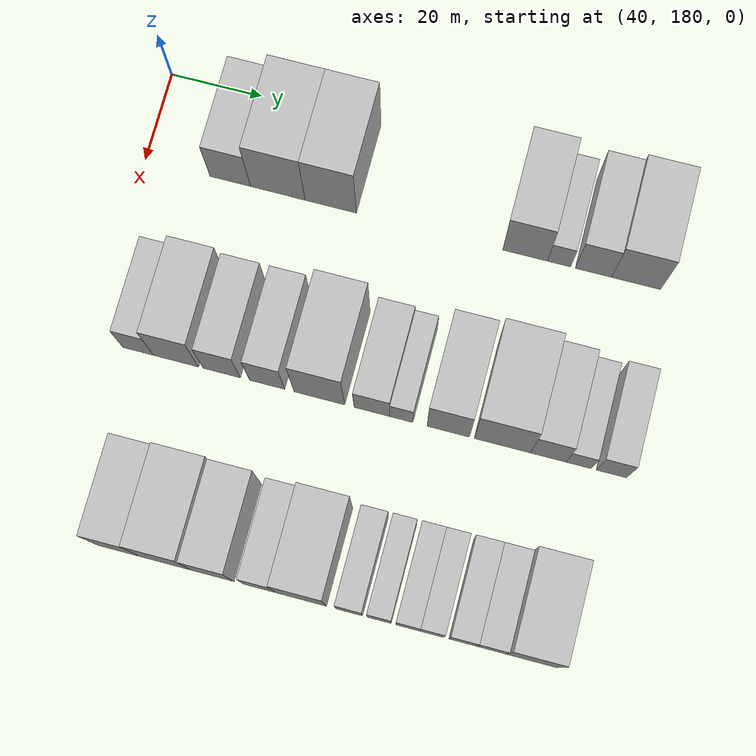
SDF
<sdf version="1.6">
 <world name="default">
  <model name="building_70">
   <static>1</static>
   <pose>50.0000 198.7415 0 0.000000 0.000000 0.000000</pose>
   <link name="link">
    <pose>0 0 9.00 0 0 0</pose>
    <collision name="collision"><geometry><box><size>20.0000 8.8567 18.0000</size></box></geometry></collision>
    <visual name="visual">
     <cast_shadows>0</cast_shadows>
     <geometry><box><size>20.0000 8.8567 18.0000</size></box></geometry>
     <material>
      <script>
       <uri>model://HANNAS_wall/materials/scripts</uri>
       <uri>model://HANNAS_wall/materials/textures</uri>
       <name>vrc/HANNAS_wall</name>
      </script>
     </material>
    </visual>
   </link>
  </model>
  <model name="building_71">
   <static>1</static>
   <pose>50.0000 209.1260 0 0.000000 0.000000 0.000000</pose>
   <link name="link">
    <pose>0 0 12.00 0 0 0</pose>
    <collision name="collision"><geometry><box><size>20.0000 11.9123 24.0000</size></box></geometry></collision>
    <visual name="visual">
     <cast_shadows>0</cast_shadows>
     <geometry><box><size>20.0000 11.9123 24.0000</size></box></geometry>
     <material>
      <script>
       <uri>model://HANNAS_wall/materials/scripts</uri>
       <uri>model://HANNAS_wall/materials/textures</uri>
       <name>vrc/HANNAS_wall</name>
      </script>
     </material>
    </visual>
   </link>
  </model>
  <model name="building_72">
   <static>1</static>
   <pose>50.0000 220.6536 0 0.000000 0.000000 0.000000</pose>
   <link name="link">
    <pose>0 0 12.00 0 0 0</pose>
    <collision name="collision"><geometry><box><size>20.0000 11.1428 24.0000</size></box></geometry></collision>
    <visual name="visual">
     <cast_shadows>0</cast_shadows>
     <geometry><box><size>20.0000 11.1428 24.0000</size></box></geometry>
     <material>
      <script>
       <uri>model://HANNAS_wall/materials/scripts</uri>
       <uri>model://HANNAS_wall/materials/textures</uri>
       <name>vrc/HANNAS_wall</name>
      </script>
     </material>
    </visual>
   </link>
  </model>
  <model name="building_73">
   <static>1</static>
   <pose>50.0000 262.5950 0 0.000000 0.000000 0.000000</pose>
   <link name="link">
    <pose>0 0 10.50 0 0 0</pose>
    <collision name="collision"><geometry><box><size>20.0000 9.5800 21.0000</size></box></geometry></collision>
    <visual name="visual">
     <cast_shadows>0</cast_shadows>
     <geometry><box><size>20.0000 9.5800 21.0000</size></box></geometry>
     <material>
      <script>
       <uri>model://HANNAS_wall/materials/scripts</uri>
       <uri>model://HANNAS_wall/materials/textures</uri>
       <name>vrc/HANNAS_wall</name>
      </script>
     </material>
    </visual>
   </link>
  </model>
  <model name="building_74">
   <static>1</static>
   <pose>50.0000 269.8548 0 0.000000 0.000000 0.000000</pose>
   <link name="link">
    <pose>0 0 6.00 0 0 0</pose>
    <collision name="collision"><geometry><box><size>20.0000 4.9397 12.0000</size></box></geometry></collision>
    <visual name="visual">
     <cast_shadows>0</cast_shadows>
     <geometry><box><size>20.0000 4.9397 12.0000</size></box></geometry>
     <material>
      <script>
       <uri>model://HANNAS_wall/materials/scripts</uri>
       <uri>model://HANNAS_wall/materials/textures</uri>
       <name>vrc/HANNAS_wall</name>
      </script>
     </material>
    </visual>
   </link>
  </model>
  <model name="building_75">
   <static>1</static>
   <pose>50.0000 277.1566 0 0.000000 0.000000 0.000000</pose>
   <link name="link">
    <pose>0 0 9.00 0 0 0</pose>
    <collision name="collision"><geometry><box><size>20.0000 7.6638 18.0000</size></box></geometry></collision>
    <visual name="visual">
     <cast_shadows>0</cast_shadows>
     <geometry><box><size>20.0000 7.6638 18.0000</size></box></geometry>
     <material>
      <script>
       <uri>model://HANNAS_wall/materials/scripts</uri>
       <uri>model://HANNAS_wall/materials/textures</uri>
       <name>vrc/HANNAS_wall</name>
      </script>
     </material>
    </visual>
   </link>
  </model>
  <model name="building_76">
   <static>1</static>
   <pose>50.0000 286.2230 0 0.000000 0.000000 0.000000</pose>
   <link name="link">
    <pose>0 0 10.50 0 0 0</pose>
    <collision name="collision"><geometry><box><size>20.0000 10.4691 21.0000</size></box></geometry></collision>
    <visual name="visual">
     <cast_shadows>0</cast_shadows>
     <geometry><box><size>20.0000 10.4691 21.0000</size></box></geometry>
     <material>
      <script>
       <uri>model://HANNAS_wall/materials/scripts</uri>
       <uri>model://HANNAS_wall/materials/textures</uri>
       <name>vrc/HANNAS_wall</name>
      </script>
     </material>
    </visual>
   </link>
  </model>
  <model name="building_145">
   <static>1</static>
   <pose>90.0000 190.6063 0 0.000000 0.000000 0.000000</pose>
   <link name="link">
    <pose>0 0 7.50 0 0 0</pose>
    <collision name="collision"><geometry><box><size>20.0000 6.5402 15.0000</size></box></geometry></collision>
    <visual name="visual">
     <cast_shadows>0</cast_shadows>
     <geometry><box><size>20.0000 6.5402 15.0000</size></box></geometry>
     <material>
      <script>
       <uri>model://HANNAS_wall/materials/scripts</uri>
       <uri>model://HANNAS_wall/materials/textures</uri>
       <name>vrc/HANNAS_wall</name>
      </script>
     </material>
    </visual>
   </link>
  </model>
  <model name="building_146">
   <static>1</static>
   <pose>90.0000 198.6851 0 0.000000 0.000000 0.000000</pose>
   <link name="link">
    <pose>0 0 10.50 0 0 0</pose>
    <collision name="collision"><geometry><box><size>20.0000 9.6175 21.0000</size></box></geometry></collision>
    <visual name="visual">
     <cast_shadows>0</cast_shadows>
     <geometry><box><size>20.0000 9.6175 21.0000</size></box></geometry>
     <material>
      <script>
       <uri>model://HANNAS_wall/materials/scripts</uri>
       <uri>model://HANNAS_wall/materials/textures</uri>
       <name>vrc/HANNAS_wall</name>
      </script>
     </material>
    </visual>
   </link>
  </model>
  <model name="building_147">
   <static>1</static>
   <pose>90.0000 208.4368 0 0.000000 0.000000 0.000000</pose>
   <link name="link">
    <pose>0 0 9.00 0 0 0</pose>
    <collision name="collision"><geometry><box><size>20.0000 7.8859 18.0000</size></box></geometry></collision>
    <visual name="visual">
     <cast_shadows>0</cast_shadows>
     <geometry><box><size>20.0000 7.8859 18.0000</size></box></geometry>
     <material>
      <script>
       <uri>model://HANNAS_wall/materials/scripts</uri>
       <uri>model://HANNAS_wall/materials/textures</uri>
       <name>vrc/HANNAS_wall</name>
      </script>
     </material>
    </visual>
   </link>
  </model>
  <model name="building_148">
   <static>1</static>
   <pose>90.0000 218.0921 0 0.000000 0.000000 0.000000</pose>
   <link name="link">
    <pose>0 0 9.00 0 0 0</pose>
    <collision name="collision"><geometry><box><size>20.0000 7.4246 18.0000</size></box></geometry></collision>
    <visual name="visual">
     <cast_shadows>0</cast_shadows>
     <geometry><box><size>20.0000 7.4246 18.0000</size></box></geometry>
     <material>
      <script>
       <uri>model://HANNAS_wall/materials/scripts</uri>
       <uri>model://HANNAS_wall/materials/textures</uri>
       <name>vrc/HANNAS_wall</name>
      </script>
     </material>
    </visual>
   </link>
  </model>
  <model name="building_149">
   <static>1</static>
   <pose>90.0000 229.1550 0 0.000000 0.000000 0.000000</pose>
   <link name="link">
    <pose>0 0 12.00 0 0 0</pose>
    <collision name="collision"><geometry><box><size>20.0000 10.7013 24.0000</size></box></geometry></collision>
    <visual name="visual">
     <cast_shadows>0</cast_shadows>
     <geometry><box><size>20.0000 10.7013 24.0000</size></box></geometry>
     <material>
      <script>
       <uri>model://HANNAS_wall/materials/scripts</uri>
       <uri>model://HANNAS_wall/materials/textures</uri>
       <name>vrc/HANNAS_wall</name>
      </script>
     </material>
    </visual>
   </link>
  </model>
  <model name="building_150">
   <static>1</static>
   <pose>90.0000 240.2508 0 0.000000 0.000000 0.000000</pose>
   <link name="link">
    <pose>0 0 7.50 0 0 0</pose>
    <collision name="collision"><geometry><box><size>20.0000 7.4903 15.0000</size></box></geometry></collision>
    <visual name="visual">
     <cast_shadows>0</cast_shadows>
     <geometry><box><size>20.0000 7.4903 15.0000</size></box></geometry>
     <material>
      <script>
       <uri>model://HANNAS_wall/materials/scripts</uri>
       <uri>model://HANNAS_wall/materials/textures</uri>
       <name>vrc/HANNAS_wall</name>
      </script>
     </material>
    </visual>
   </link>
  </model>
  <model name="building_151">
   <static>1</static>
   <pose>90.0000 246.4155 0 0.000000 0.000000 0.000000</pose>
   <link name="link">
    <pose>0 0 6.00 0 0 0</pose>
    <collision name="collision"><geometry><box><size>20.0000 4.8391 12.0000</size></box></geometry></collision>
    <visual name="visual">
     <cast_shadows>0</cast_shadows>
     <geometry><box><size>20.0000 4.8391 12.0000</size></box></geometry>
     <material>
      <script>
       <uri>model://HANNAS_wall/materials/scripts</uri>
       <uri>model://HANNAS_wall/materials/textures</uri>
       <name>vrc/HANNAS_wall</name>
      </script>
     </material>
    </visual>
   </link>
  </model>
  <model name="building_152">
   <static>1</static>
   <pose>90.0000 256.2594 0 0.000000 0.000000 0.000000</pose>
   <link name="link">
    <pose>0 0 10.50 0 0 0</pose>
    <collision name="collision"><geometry><box><size>20.0000 8.8486 21.0000</size></box></geometry></collision>
    <visual name="visual">
     <cast_shadows>0</cast_shadows>
     <geometry><box><size>20.0000 8.8486 21.0000</size></box></geometry>
     <material>
      <script>
       <uri>model://HANNAS_wall/materials/scripts</uri>
       <uri>model://HANNAS_wall/materials/textures</uri>
       <name>vrc/HANNAS_wall</name>
      </script>
     </material>
    </visual>
   </link>
  </model>
  <model name="building_153">
   <static>1</static>
   <pose>90.0000 267.5605 0 0.000000 0.000000 0.000000</pose>
   <link name="link">
    <pose>0 0 12.00 0 0 0</pose>
    <collision name="collision"><geometry><box><size>20.0000 11.7536 24.0000</size></box></geometry></collision>
    <visual name="visual">
     <cast_shadows>0</cast_shadows>
     <geometry><box><size>20.0000 11.7536 24.0000</size></box></geometry>
     <material>
      <script>
       <uri>model://HANNAS_wall/materials/scripts</uri>
       <uri>model://HANNAS_wall/materials/textures</uri>
       <name>vrc/HANNAS_wall</name>
      </script>
     </material>
    </visual>
   </link>
  </model>
  <model name="building_154">
   <static>1</static>
   <pose>90.0000 277.1360 0 0.000000 0.000000 0.000000</pose>
   <link name="link">
    <pose>0 0 9.00 0 0 0</pose>
    <collision name="collision"><geometry><box><size>20.0000 7.3975 18.0000</size></box></geometry></collision>
    <visual name="visual">
     <cast_shadows>0</cast_shadows>
     <geometry><box><size>20.0000 7.3975 18.0000</size></box></geometry>
     <material>
      <script>
       <uri>model://HANNAS_wall/materials/scripts</uri>
       <uri>model://HANNAS_wall/materials/textures</uri>
       <name>vrc/HANNAS_wall</name>
      </script>
     </material>
    </visual>
   </link>
  </model>
  <model name="building_155">
   <static>1</static>
   <pose>90.0000 283.4582 0 0.000000 0.000000 0.000000</pose>
   <link name="link">
    <pose>0 0 6.00 0 0 0</pose>
    <collision name="collision"><geometry><box><size>20.0000 5.2469 12.0000</size></box></geometry></collision>
    <visual name="visual">
     <cast_shadows>0</cast_shadows>
     <geometry><box><size>20.0000 5.2469 12.0000</size></box></geometry>
     <material>
      <script>
       <uri>model://HANNAS_wall/materials/scripts</uri>
       <uri>model://HANNAS_wall/materials/textures</uri>
       <name>vrc/HANNAS_wall</name>
      </script>
     </material>
    </visual>
   </link>
  </model>
  <model name="building_156">
   <static>1</static>
   <pose>90.0000 290.2266 0 0.000000 0.000000 0.000000</pose>
   <link name="link">
    <pose>0 0 7.50 0 0 0</pose>
    <collision name="collision"><geometry><box><size>20.0000 6.2899 15.0000</size></box></geometry></collision>
    <visual name="visual">
     <cast_shadows>0</cast_shadows>
     <geometry><box><size>20.0000 6.2899 15.0000</size></box></geometry>
     <material>
      <script>
       <uri>model://HANNAS_wall/materials/scripts</uri>
       <uri>model://HANNAS_wall/materials/textures</uri>
       <name>vrc/HANNAS_wall</name>
      </script>
     </material>
    </visual>
   </link>
  </model>
  <model name="building_226">
   <static>1</static>
   <pose>130.0000 198.7001 0 0.000000 0.000000 0.000000</pose>
   <link name="link">
    <pose>0 0 10.50 0 0 0</pose>
    <collision name="collision"><geometry><box><size>20.0000 8.8362 21.0000</size></box></geometry></collision>
    <visual name="visual">
     <cast_shadows>0</cast_shadows>
     <geometry><box><size>20.0000 8.8362 21.0000</size></box></geometry>
     <material>
      <script>
       <uri>model://HANNAS_wall/materials/scripts</uri>
       <uri>model://HANNAS_wall/materials/textures</uri>
       <name>vrc/HANNAS_wall</name>
      </script>
     </material>
    </visual>
   </link>
  </model>
  <model name="building_227">
   <static>1</static>
   <pose>130.0000 208.4206 0 0.000000 0.000000 0.000000</pose>
   <link name="link">
    <pose>0 0 12.00 0 0 0</pose>
    <collision name="collision"><geometry><box><size>20.0000 10.6049 24.0000</size></box></geometry></collision>
    <visual name="visual">
     <cast_shadows>0</cast_shadows>
     <geometry><box><size>20.0000 10.6049 24.0000</size></box></geometry>
     <material>
      <script>
       <uri>model://HANNAS_wall/materials/scripts</uri>
       <uri>model://HANNAS_wall/materials/textures</uri>
       <name>vrc/HANNAS_wall</name>
      </script>
     </material>
    </visual>
   </link>
  </model>
  <model name="building_228">
   <static>1</static>
   <pose>130.0000 218.1414 0 0.000000 0.000000 0.000000</pose>
   <link name="link">
    <pose>0 0 10.50 0 0 0</pose>
    <collision name="collision"><geometry><box><size>20.0000 8.8367 21.0000</size></box></geometry></collision>
    <visual name="visual">
     <cast_shadows>0</cast_shadows>
     <geometry><box><size>20.0000 8.8367 21.0000</size></box></geometry>
     <material>
      <script>
       <uri>model://HANNAS_wall/materials/scripts</uri>
       <uri>model://HANNAS_wall/materials/textures</uri>
       <name>vrc/HANNAS_wall</name>
      </script>
     </material>
    </visual>
   </link>
  </model>
  <model name="building_229">
   <static>1</static>
   <pose>130.0000 227.8342 0 0.000000 0.000000 0.000000</pose>
   <link name="link">
    <pose>0 0 7.50 0 0 0</pose>
    <collision name="collision"><geometry><box><size>20.0000 6.5488 15.0000</size></box></geometry></collision>
    <visual name="visual">
     <cast_shadows>0</cast_shadows>
     <geometry><box><size>20.0000 6.5488 15.0000</size></box></geometry>
     <material>
      <script>
       <uri>model://HANNAS_wall/materials/scripts</uri>
       <uri>model://HANNAS_wall/materials/textures</uri>
       <name>vrc/HANNAS_wall</name>
      </script>
     </material>
    </visual>
   </link>
  </model>
  <model name="building_230">
   <static>1</static>
   <pose>130.0000 236.3385 0 0.000000 0.000000 0.000000</pose>
   <link name="link">
    <pose>0 0 10.50 0 0 0</pose>
    <collision name="collision"><geometry><box><size>20.0000 10.4600 21.0000</size></box></geometry></collision>
    <visual name="visual">
     <cast_shadows>0</cast_shadows>
     <geometry><box><size>20.0000 10.4600 21.0000</size></box></geometry>
     <material>
      <script>
       <uri>model://HANNAS_wall/materials/scripts</uri>
       <uri>model://HANNAS_wall/materials/textures</uri>
       <name>vrc/HANNAS_wall</name>
      </script>
     </material>
    </visual>
   </link>
  </model>
  <model name="building_231">
   <static>1</static>
   <pose>130.0000 246.2659 0 0.000000 0.000000 0.000000</pose>
   <link name="link">
    <pose>0 0 6.00 0 0 0</pose>
    <collision name="collision"><geometry><box><size>20.0000 5.3947 12.0000</size></box></geometry></collision>
    <visual name="visual">
     <cast_shadows>0</cast_shadows>
     <geometry><box><size>20.0000 5.3947 12.0000</size></box></geometry>
     <material>
      <script>
       <uri>model://HANNAS_wall/materials/scripts</uri>
       <uri>model://HANNAS_wall/materials/textures</uri>
       <name>vrc/HANNAS_wall</name>
      </script>
     </material>
    </visual>
   </link>
  </model>
  <model name="building_232">
   <static>1</static>
   <pose>130.0000 252.3782 0 0.000000 0.000000 0.000000</pose>
   <link name="link">
    <pose>0 0 6.00 0 0 0</pose>
    <collision name="collision"><geometry><box><size>20.0000 4.8300 12.0000</size></box></geometry></collision>
    <visual name="visual">
     <cast_shadows>0</cast_shadows>
     <geometry><box><size>20.0000 4.8300 12.0000</size></box></geometry>
     <material>
      <script>
       <uri>model://HANNAS_wall/materials/scripts</uri>
       <uri>model://HANNAS_wall/materials/textures</uri>
       <name>vrc/HANNAS_wall</name>
      </script>
     </material>
    </visual>
   </link>
  </model>
  <model name="building_233">
   <static>1</static>
   <pose>130.0000 258.2226 0 0.000000 0.000000 0.000000</pose>
   <link name="link">
    <pose>0 0 6.00 0 0 0</pose>
    <collision name="collision"><geometry><box><size>20.0000 4.8588 12.0000</size></box></geometry></collision>
    <visual name="visual">
     <cast_shadows>0</cast_shadows>
     <geometry><box><size>20.0000 4.8588 12.0000</size></box></geometry>
     <material>
      <script>
       <uri>model://HANNAS_wall/materials/scripts</uri>
       <uri>model://HANNAS_wall/materials/textures</uri>
       <name>vrc/HANNAS_wall</name>
      </script>
     </material>
    </visual>
   </link>
  </model>
  <model name="building_234">
   <static>1</static>
   <pose>130.0000 263.0963 0 0.000000 0.000000 0.000000</pose>
   <link name="link">
    <pose>0 0 6.00 0 0 0</pose>
    <collision name="collision"><geometry><box><size>20.0000 4.8885 12.0000</size></box></geometry></collision>
    <visual name="visual">
     <cast_shadows>0</cast_shadows>
     <geometry><box><size>20.0000 4.8885 12.0000</size></box></geometry>
     <material>
      <script>
       <uri>model://HANNAS_wall/materials/scripts</uri>
       <uri>model://HANNAS_wall/materials/textures</uri>
       <name>vrc/HANNAS_wall</name>
      </script>
     </material>
    </visual>
   </link>
  </model>
  <model name="building_235">
   <static>1</static>
   <pose>130.0000 269.3535 0 0.000000 0.000000 0.000000</pose>
   <link name="link">
    <pose>0 0 6.00 0 0 0</pose>
    <collision name="collision"><geometry><box><size>20.0000 5.6260 12.0000</size></box></geometry></collision>
    <visual name="visual">
     <cast_shadows>0</cast_shadows>
     <geometry><box><size>20.0000 5.6260 12.0000</size></box></geometry>
     <material>
      <script>
       <uri>model://HANNAS_wall/materials/scripts</uri>
       <uri>model://HANNAS_wall/materials/textures</uri>
       <name>vrc/HANNAS_wall</name>
      </script>
     </material>
    </visual>
   </link>
  </model>
  <model name="building_236">
   <static>1</static>
   <pose>130.0000 275.1358 0 0.000000 0.000000 0.000000</pose>
   <link name="link">
    <pose>0 0 6.00 0 0 0</pose>
    <collision name="collision"><geometry><box><size>20.0000 5.9385 12.0000</size></box></geometry></collision>
    <visual name="visual">
     <cast_shadows>0</cast_shadows>
     <geometry><box><size>20.0000 5.9385 12.0000</size></box></geometry>
     <material>
      <script>
       <uri>model://HANNAS_wall/materials/scripts</uri>
       <uri>model://HANNAS_wall/materials/textures</uri>
       <name>vrc/HANNAS_wall</name>
      </script>
     </material>
    </visual>
   </link>
  </model>
  <model name="building_237">
   <static>1</static>
   <pose>130.0000 283.3078 0 0.000000 0.000000 0.000000</pose>
   <link name="link">
    <pose>0 0 10.50 0 0 0</pose>
    <collision name="collision"><geometry><box><size>20.0000 10.4054 21.0000</size></box></geometry></collision>
    <visual name="visual">
     <cast_shadows>0</cast_shadows>
     <geometry><box><size>20.0000 10.4054 21.0000</size></box></geometry>
     <material>
      <script>
       <uri>model://HANNAS_wall/materials/scripts</uri>
       <uri>model://HANNAS_wall/materials/textures</uri>
       <name>vrc/HANNAS_wall</name>
      </script>
     </material>
    </visual>
   </link>
  </model>
 </world>
</sdf>
